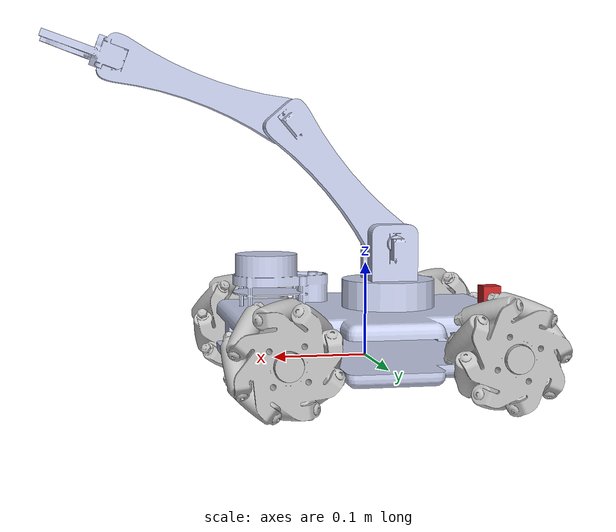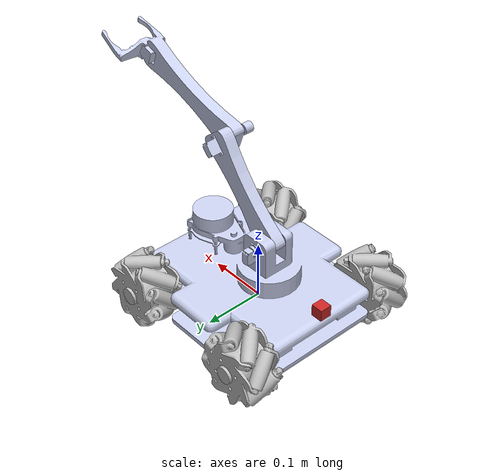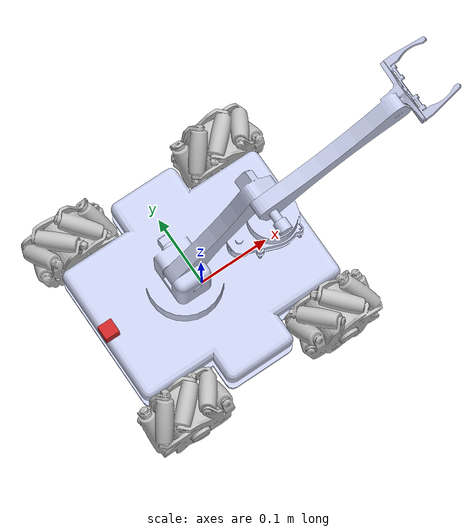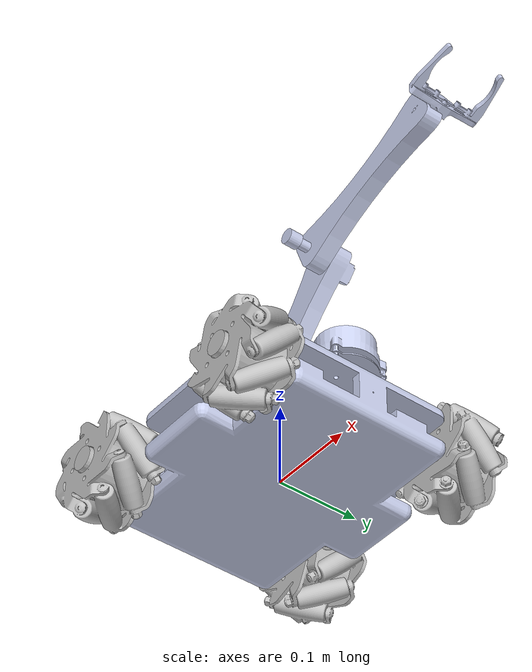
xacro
<?xml version="1.0"?>
<robot xmlns:xacro="http://www.ros.org/wiki/xacro" name="meca">

<!-- ======================================= Model include  ====================================-->

<!-- Base -->
<xacro:include filename="$(find midterm)/xacro/model/base/base.xacro"/>

<!-- Wheel -->
<xacro:include filename="$(find midterm)/xacro/model/wheel/wheel.xacro"/>

<!-- Wheel -->
<xacro:include filename="$(find midterm)/xacro/model/wheel1/wheel1.xacro"/>

<!-- Arm -->
<xacro:include filename="$(find midterm)/xacro/model/arm/arm.xacro"/>

<!-- Arm1 -->
<xacro:include filename="$(find midterm)/xacro/model/arm1/arm1.xacro"/>

<!-- RplidarA1 -->
<xacro:include filename="$(find midterm)/xacro/model/sensor/lidar/lidar.xacro"/>

<!-- camera -->
<xacro:include filename="$(find midterm)/xacro/model/sensor/camera/camera.xacro"/>

<!-- rear camera -->

<!-- ======================================= Gazebo include  ====================================-->

<!-- Transmission -->
<xacro:include filename="$(find midterm)/xacro/gazebo/transmission/transmission.xacro"/>

<!-- Plugin -->
<xacro:include filename="$(find midterm)/xacro/gazebo/plugin/plugin.xacro"/>

<!-- ======================================= Model Macro  ====================================-->

<!-- Base -->
<xacro:base/>

<!-- Wheel -->
<xacro:wheel/>

<!-- Wheel1 -->
<xacro:wheel1/>

<!-- Wheel -->
<xacro:arm/>

<!-- Wheel1 -->
<xacro:arm1/>

<!-- RplidarA1 -->
<xacro:lidar/>

<!-- camera -->
<xacro:camera/>

<!-- rear_camera -->
<!-- ======================================= Gazebo Macro  ====================================-->

<!-- Transmission -->
<xacro:transmission_gazebo/>

<!-- Plugin -->
<xacro:gazebo_plugin/>

</robot>

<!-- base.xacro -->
<robot xmlns:xacro="http://www.ros.org/wiki/xacro">
    <xacro:macro name="base">

        <link name="base_footprint"></link>

        <joint name="joint_base_footprint" type="fixed">
            <parent link="base_footprint"/>
            <child link="base_link"/>
            <origin xyz="0.0 0.0 0.037" rpy="0.0 0.0 0.0"/>
        </joint>

        <link name="base_link">
            <inertial>
                <origin xyz="-0.00280638761136618 9.22799255059434E-05 -0.00823780680525314" rpy="0 0 0" />
                <mass value="2.73624245548653" />
                <inertia ixx="0.0111853471576075" ixy="-7.2511498712482E-11" ixz="0.000255799746468985" iyy="0.0161314353661535" iyz="1.81571166508761E-07" izz="0.0239017300755925" />
            </inertial>
            <visual>
                <origin xyz="0 0 0" rpy="0 0 0" />
                <geometry>
                    <mesh filename="package://midterm/urdf/meshes/base_link.STL" />
                </geometry>
                <material name="">
                    <color rgba="0.792156862745098 0.819607843137255 0.933333333333333 1" />
                </material>
            </visual>
            <collision>
                <origin xyz="0 0 0" rpy="0 0 0" />
                <geometry>
                    <mesh filename="package://midterm/urdf/meshes/base_link.STL" />
                </geometry>
            </collision>
        </link>
    </xacro:macro>

</robot>

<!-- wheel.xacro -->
<robot xmlns:xacro="http://www.ros.org/wiki/xacro">

  <xacro:macro name="wheel">

    <link name="Left_forward_wheel">
      <inertial>
        <origin xyz="1.2490009027033E-16 -6.1409211049579E-16 -0.0318963397161268" rpy="0 0 0" />
        <mass value="0.38693434007123" />
        <inertia ixx="0.000164665684225832" ixy="1.03435021381098E-16" ixz="2.79933590586541E-16" iyy="0.000164665684225701" iyz="1.53586588595806E-16" izz="0.000205539151193427" />
      </inertial>
      <visual>
        <origin xyz="0 0 0" rpy="0 0 0" />
        <geometry>
          <mesh filename="package://midterm/urdf/meshes/Left_forward_wheel.STL" />
        </geometry>
        <material name="">
          <color rgba="0.752941176470588 0.752941176470588 0.752941176470588 1" />
        </material>
      </visual>
      <collision>
        <origin xyz="0 0 0" rpy="0 0 0" />
        <geometry>
          <mesh filename="package://midterm/urdf/meshes/Left_forward_wheel.STL" />
        </geometry>
      </collision>
    </link>

    <joint name="Left_forward_joint" type="fixed">
      <origin xyz="0 0 0" rpy="0 0 0" />
      <parent link="Left_forward_wheel1" />
      <child link="Left_forward_wheel" />
      <axis xyz="0 0 1" />
      <dynamics damping="0.1" friction="0.1" />
    </joint>

    <link name="Right_forward_wheel">
      <inertial>
        <origin xyz="-1.2490009027033E-16 4.85722573273506E-17 -0.0318963396900528" rpy="0 0 0" />
        <mass value="0.386934339646562" />
        <inertia ixx="0.00016466568423101" ixy="-3.19541061769317E-17" ixz="-3.82361260302432E-17" iyy="0.000164665684231041" iyz="-2.40756939158418E-17" izz="0.000205539151181393" />
      </inertial>
      <visual>
        <origin xyz="0 0 0" rpy="0 0 0" />
        <geometry>
          <mesh filename="package://midterm/urdf/meshes/Right_forward_wheel.STL" />
        </geometry>
        <material name="">
          <color rgba="0.752941176470588 0.752941176470588 0.752941176470588 1" />
        </material>
      </visual>
      <collision>
        <origin xyz="0 0 0" rpy="0 0 0" />
        <geometry>
          <mesh filename="package://midterm/urdf/meshes/Right_forward_wheel.STL" />
        </geometry>
      </collision>
    </link>

    <joint name="Right_forward_joint" type="fixed">
      <origin xyz="0 0 0" rpy="0 0 0" />
      <parent link="Right_forward_wheel1" />
      <child link="Right_forward_wheel" />
      <axis xyz="0 0 -1" />
      <dynamics damping="0.1" friction="0.1" />
    </joint>

    <link name="Left_backward_wheel">
      <inertial>
        <origin xyz="-3.88578058618805E-16 1.52655665885959E-16 -0.0318963396983103" rpy="0 0 0" />
        <mass value="0.38693433977405" />
        <inertia ixx="0.000164665684224543" ixy="-5.44366971754961E-17" ixz="-1.64638873428518E-17" iyy="0.000164665684224467" iyz="-4.73291942910437E-17" izz="0.000205539151192063" />
      </inertial>
      <visual>
        <origin xyz="0 0 0" rpy="0 0 0" />
        <geometry>
          <mesh filename="package://midterm/urdf/meshes/Right_backward_wheel.STL" />
        </geometry>
        <material name="">
          <color rgba="0.752941176470588 0.752941176470588 0.752941176470588 1" />
        </material>
      </visual>
      <collision>
        <origin xyz="0 0 0" rpy="0 0 0" />
        <geometry>
          <mesh filename="package://midterm/urdf/meshes/Right_backward_wheel.STL" />
        </geometry>
      </collision>
    </link>

    <joint name="Left_backward_joint" type="fixed">
      <origin xyz="0 0 0" rpy="0 0 0" />
      <parent link="Left_backward_wheel1" />
      <child link="Left_backward_wheel" />
      <axis xyz="0 0 1" />
      <dynamics damping="0.1" friction="0.1" />
    </joint>

    <link name="Right_backward_wheel">
      <inertial>
        <origin xyz="3.88578058618805E-16 3.81639164714898E-17 -0.0318963396918449" rpy="0 0 0" />
        <mass value="0.386934339673269" />
        <inertia ixx="0.000164665684230379" ixy="7.84436153661023E-17" ixz="-5.11751895742631E-17" iyy="0.000164665684230335" iyz="-1.24644074562022E-17" izz="0.000205539151179241" />
      </inertial>
      <visual>
        <origin xyz="0 0 0" rpy="0 0 0" />
        <geometry>
          <mesh filename="package://midterm/urdf/meshes/Left_backward_wheel.STL" />
        </geometry>
        <material name="">
          <color rgba="0.752941176470588 0.752941176470588 0.752941176470588 1" />
        </material>
      </visual>
      <collision>
        <origin xyz="0 0 0" rpy="0 0 0" />
        <geometry>
          <mesh filename="package://midterm/urdf/meshes/Left_backward_wheel.STL" />
        </geometry>
      </collision>
    </link>

    <joint name="Right_backward_joint" type="fixed">
      <origin xyz="0 0 0" rpy="0 0 0" />
      <parent link="Right_backward_wheel1" />
      <child link="Right_backward_wheel" />
      <axis xyz="0 0 -1" />
      <dynamics damping="0.1" friction="0.1" />
    </joint>
  </xacro:macro>

</robot>

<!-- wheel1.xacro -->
<robot xmlns:xacro="http://www.ros.org/wiki/xacro">

    <xacro:macro name="wheel1">

        <link name="Left_forward_wheel1">
            <inertial>
                <origin xyz="1.2490009027033E-16 -6.1409211049579E-16 -0.0318963397161268" rpy="0 0 0" />
                <mass value="0.38693434007123" />
                <inertia ixx="0.000164665684225832" ixy="1.03435021381098E-16" ixz="2.79933590586541E-16" iyy="0.000164665684225701" iyz="1.53586588595806E-16" izz="0.000205539151193427" />
            </inertial>
            <visual>
                <origin xyz="0 0 0" rpy="0 0 0" />
                <geometry>
                    <cylinder length="0.009" radius="0.014"/>
                </geometry>
                <material name="">
                    <color rgba="0.752941176470588 0.752941176470588 0.752941176470588 1" />
                </material>
            </visual>
            <collision>
                <origin xyz="0 0 0" rpy="0 0 0" />
                <geometry>
                    <cylinder length="0.009" radius="0.014"/>
                </geometry>
            </collision>
        </link>
        <joint name="Left_forward_joint1" type="continuous">
            <origin xyz="0.1135 0.165 -0.0179" rpy="-1.5708 0 0" />
            <parent link="base_link" />
            <child link="Left_forward_wheel1" />
            <axis xyz="0 0 1" />
            <dynamics damping="0.1" friction="0.1" />
        </joint>

        <link name="Right_forward_wheel1">
            <inertial>
                <origin xyz="-1.2490009027033E-16 4.85722573273506E-17 -0.0318963396900528" rpy="0 0 0" />
                <mass value="0.386934339646562" />
                <inertia ixx="0.00016466568423101" ixy="-3.19541061769317E-17" ixz="-3.82361260302432E-17" iyy="0.000164665684231041" iyz="-2.40756939158418E-17" izz="0.000205539151181393" />
            </inertial>
            <visual>
                <origin xyz="0 0 0" rpy="0 0 0" />
                <geometry>
                    <cylinder length="0.009" radius="0.014"/>
                </geometry>
                <material name="">
                    <color rgba="0.752941176470588 0.752941176470588 0.752941176470588 1" />
                </material>
            </visual>
            <collision>
                <origin xyz="0 0 0" rpy="0 0 0" />
                <geometry>
                    <cylinder length="0.009" radius="0.014"/>
                </geometry>
            </collision>
        </link>
        <joint name="Right_forward_joint1" type="continuous">
            <origin xyz="0.1135 -0.165 -0.0179" rpy="1.5708 0 0" />
            <parent link="base_link" />
            <child link="Right_forward_wheel1" />
            <axis xyz="0 0 -1" />
            <dynamics damping="0.1" friction="0.1" />
        </joint>

        <link name="Left_backward_wheel1">
            <inertial>
                <origin xyz="-3.88578058618805E-16 1.52655665885959E-16 -0.0318963396983103" rpy="0 0 0" />
                <mass value="0.38693433977405" />
                <inertia ixx="0.000164665684224543" ixy="-5.44366971754961E-17" ixz="-1.64638873428518E-17" iyy="0.000164665684224467" iyz="-4.73291942910437E-17" izz="0.000205539151192063" />
            </inertial>
            <visual>
                <origin xyz="0 0 0" rpy="0 0 0" />
                <geometry>
                    <cylinder length="0.009" radius="0.014"/>
                </geometry>
                <material name="">
                    <color rgba="0.752941176470588 0.752941176470588 0.752941176470588 1" />
                </material>
            </visual>
            <collision>
                <origin xyz="0 0 0" rpy="0 0 0" />
                <geometry>
                    <cylinder length="0.009" radius="0.014"/>
                </geometry>
            </collision>
        </link>
        <joint name="Left_backward_joint1" type="continuous">
            <origin xyz="-0.1135 0.165 -0.0179" rpy="-1.5708 0 0" />
            <parent link="base_link" />
            <child link="Left_backward_wheel1" />
            <axis xyz="0 0 1" />
            <dynamics damping="0.1" friction="0.1" />
        </joint>

        <link name="Right_backward_wheel1">
            <inertial>
                <origin xyz="3.88578058618805E-16 3.81639164714898E-17 -0.0318963396918449" rpy="0 0 0" />
                <mass value="0.386934339673269" />
                <inertia ixx="0.000164665684230379" ixy="7.84436153661023E-17" ixz="-5.11751895742631E-17" iyy="0.000164665684230335" iyz="-1.24644074562022E-17" izz="0.000205539151179241" />
            </inertial>
            <visual>
                <origin xyz="0 0 0" rpy="0 0 0" />
                <geometry>
                    <cylinder length="0.009" radius="0.014"/>
                </geometry>
                <material name="">
                    <color rgba="0.752941176470588 0.752941176470588 0.752941176470588 1" />
                </material>
            </visual>
            <collision>
                <origin xyz="0 0 0" rpy="0 0 0" />
                <geometry>
                    <cylinder length="0.009" radius="0.014"/>
                </geometry>
            </collision>
        </link>
        <joint name="Right_backward_joint1" type="continuous">
            <origin xyz="-0.1135 -0.165 -0.0179" rpy="1.5708 0 0" />
            <parent link="base_link" />
            <child link="Right_backward_wheel1" />
            <axis xyz="0 0 -1" />
            <dynamics damping="0.1" friction="0.1" />
        </joint>

    <gazebo reference="Left_forward_wheel1">
		<material>Gazebo/Green</material>
		<kp>1000000.0</kp> <!-- kp and kd for rubber -->
		<kd>100.0</kd>
		<mu1>1.0</mu1>
		<mu2>1.0</mu2>
		<maxVel>3.0</maxVel>
		<minDepth>0.00</minDepth>
	</gazebo>

	<gazebo reference="Left_backward_wheel1">
		<material>Gazebo/Green</material>
		<kp>1000000.0</kp> <!-- kp and kd for rubber -->
		<kd>100.0</kd>
		<mu1>1.0</mu1>
		<mu2>1.0</mu2>
		<maxVel>3.0</maxVel>
		<minDepth>0.00</minDepth>
	</gazebo>

	<gazebo reference="Right_forward_wheel1">
		<material>Gazebo/Green</material>
		<kp>1000000.0</kp> <!-- kp and kd for rubber -->
		<kd>100.0</kd>
		<mu1>1.0</mu1>
		<mu2>1.0</mu2>
		<maxVel>3.0</maxVel>
		<minDepth>0.00</minDepth>
	</gazebo>

	<gazebo reference="Right_backward_wheel1">
		<material>Gazebo/Green</material>
		<kp>1000000.0</kp> <!-- kp and kd for rubber -->
		<kd>100.0</kd>
		<mu1>1.0</mu1>
		<mu2>1.0</mu2>
		<maxVel>3.0</maxVel>
		<minDepth>0.00</minDepth>
	</gazebo>

      <gazebo>

    <plugin name="skid_steer_drive_controller" filename="libgazebo_ros_skid_steer_drive.so">
      <updateRate>10.0</updateRate>
      <robotNamespace>/midterm</robotNamespace>
      <leftFrontJoint>Left_forward_joint1</leftFrontJoint>
      <rightFrontJoint>Right_forward_joint1</rightFrontJoint>
      <leftRearJoint>Left_backward_joint1</leftRearJoint>
      <rightRearJoint>Right_backward_joint1</rightRearJoint>
      <wheelSeparation>0.4</wheelSeparation>
      <wheelDiameter>0.2</wheelDiameter>
      <robotBaseFrame>base_footprint</robotBaseFrame>
      <torque>10</torque>

      <topicName>cmd_vel</topicName>
      <odometryTopic>odom</odometryTopic>
      <odometryFrame>odom</odometryFrame>

      <commandTopic>cmd_vel</commandTopic>
      <topic_name_twist>cmd_vel</topic_name_twist>
      <topic_name_odometry>odom</topic_name_odometry>
      <topic_name_joint>joint</topic_name_joint>

      <broadcastTF>true</broadcastTF>

      <covariance_x>0.0001</covariance_x>
      <covariance_y>0.0001</covariance_y>
      <covariance_yaw>0.01</covariance_yaw>

    </plugin>

  </gazebo>

    </xacro:macro>

</robot>

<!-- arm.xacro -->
<robot xmlns:xacro="http://www.ros.org/wiki/xacro">

    <xacro:macro name="arm">
        <link name="link1">
            <inertial>
                <origin xyz="0.0130133047131633 0.0889204179261883 -0.0296765696165617" rpy="0 0 0" />
                <mass value="0.164486554024359" />
                <inertia ixx="0.000544779739701674" ixy="-7.45784439965975E-05" ixz="9.94065100983671E-08" iyy="4.6096716851494E-05" iyz="6.79248063491979E-07" izz="0.000565982592073471" />
            </inertial>
            <visual>
                <origin xyz="0 0 0" rpy="0 0 0" />
                <geometry>
                    <mesh filename="package://midterm/urdf/meshes/link1.STL" />
                </geometry>
                <material name="">
                    <color rgba="0.792156862745098 0.819607843137255 0.933333333333333 1" />
                </material>
            </visual>
            <collision>
                <origin xyz="0 0 0" rpy="0 0 0" />
                <geometry>
                    <mesh filename="package://midterm/urdf/meshes/link1.STL" />
                </geometry>
            </collision>
        </link>
        <joint name="link1_joint" type="fixed">
            <origin xyz="0 0 0" rpy="0 0 0" />
            <parent link="link11" />
            <child link="link1" />
            <axis xyz="0 0 1" />
            <limit lower="0" upper="0" effort="0" velocity="0" />
            <dynamics damping="0.1" friction="0.1" />
        </joint>
        <link name="link2">
            <inertial>
                <origin xyz="0.104899329069202 0.0379645740880208 -0.0321285668568063" rpy="0 0 0" />
                <mass value="0.184332677556066" />
                <inertia ixx="0.000107535031720432" ixy="-0.000205718924701572" ixz="-1.78149467639473E-06" iyy="0.000593870869716796" iyz="-6.41437127577083E-07" izz="0.000681305864636033" />
            </inertial>
            <visual>
                <origin xyz="0 0 0" rpy="0 0 0" />
                <geometry>
                    <mesh filename="package://midterm/urdf/meshes/link2.STL" />
                </geometry>
                <material name="">
                    <color rgba="0.792156862745098 0.819607843137255 0.933333333333333 1" />
                </material>
            </visual>
            <collision>
                <origin xyz="0 0 0" rpy="0 0 0" />
                <geometry>
                    <mesh filename="package://midterm/urdf/meshes/link2.STL" />
                </geometry>
            </collision>
        </link>
        <joint name="link2_joint" type="fixed">
            <origin xyz="0 0 0" rpy="0 0 0" />
            <parent link="link21" />
            <child link="link2" />
            <axis xyz="0 0 1" />
            <limit lower="0" upper="0" effort="0" velocity="0" />
            <dynamics damping="0.1" friction="0.1" />
        </joint>
    </xacro:macro>

</robot>

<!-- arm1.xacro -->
<robot xmlns:xacro="http://www.ros.org/wiki/xacro">

    <xacro:macro name="arm1">

        <link name="link11">
            <inertial>
                <origin xyz="0.0130133047131633 0.0889204179261883 -0.0296765696165617" rpy="0 0 0" />
                <mass value="0.164486554024359" />
                <inertia ixx="0.000544779739701674" ixy="-7.45784439965975E-05" ixz="9.94065100983671E-08" iyy="4.6096716851494E-05" iyz="6.79248063491979E-07" izz="0.000565982592073471" />
            </inertial>
            <visual>
                <origin xyz="0 0 0" rpy="0 0 0" />
                <geometry>
                    <cylinder length="0.015" radius="0.009"/>
                </geometry>
                <material name="">
                    <color rgba="0.792156862745098 0.819607843137255 0.933333333333333 1" />
                </material>
            </visual>
            <collision>
                <origin xyz="0 0 0" rpy="0 0 0" />
                <geometry>
                    <cylinder length="0.015" radius="0.009"/>
                </geometry>
            </collision>
        </link>

        <joint name="link1_joint1" type="revolute">
            <origin xyz="-0.025 0.0295 0.085" rpy="1.5708 -0.85308 3.1416" />
            <parent link="base_link" />
            <child link="link11" />
            <axis xyz="0 0 1" />
            <limit lower="0" upper="0.6" effort="10" velocity="2" />
            <dynamics damping="0.1" friction="0.1" />
        </joint>

        <link name="link21">
            <inertial>
                <origin xyz="0.104899329069202 0.0379645740880208 -0.0321285668568063" rpy="0 0 0" />
                <mass value="0.184332677556066" />
                <inertia ixx="0.000107535031720432" ixy="-0.000205718924701572" ixz="-1.78149467639473E-06" iyy="0.000593870869716796" iyz="-6.41437127577083E-07" izz="0.000681305864636033" />
            </inertial>
            <visual>
                <origin xyz="0 0 0" rpy="0 0 0" />
                <geometry>
                    <cylinder length="0.015" radius="0.009"/>
                </geometry>
                <material name="">
                    <color rgba="0.792156862745098 0.819607843137255 0.933333333333333 1" />
                </material>
            </visual>
            <collision>
                <origin xyz="0 0 0" rpy="0 0 0" />
                <geometry>
                    <cylinder length="0.015" radius="0.009"/>
                </geometry>
            </collision>
        </link>

        <joint name="link2_joint1" type="revolute">
            <origin xyz="0.024617 0.16821 -0.08085" rpy="3.1416 0 2.2885" />
            <parent link="link11" />
            <child link="link21" />
            <axis xyz="0 0 1" />
            <limit lower="0" upper="1.047" effort="10" velocity="2" />
            <dynamics damping="0.1" friction="0.1" />
        </joint>
    </xacro:macro>

    <gazebo reference="link11">
        <material>Gazebo/Green</material>
        <mu1>0.2</mu1>
        <mu2>0.2</mu2>
        <material>Gazebo/Black</material>
    </gazebo>

    <gazebo reference="link21">
        <material>Gazebo/Green</material>
        <mu1>0.2</mu1>
        <mu2>0.2</mu2>
        <material>Gazebo/Black</material>
    </gazebo>

    <gazebo>
        <plugin name="servo_plugin1" filename="libgazebo_ros_joint_position_control.so">
            <joint>link1_joint1</joint>
            <commandTopic>/servo_joint1/command</commandTopic>
            <gain>10.0</gain>
        </plugin>
    </gazebo>

    <gazebo>
        <plugin name="servo_plugin2" filename="libgazebo_ros_joint_position_control.so">
            <joint>link2_joint1</joint>
            <commandTopic>/servo_joint2/command</commandTopic>
            <gain>10.0</gain>
        </plugin>
    </gazebo>

</robot>

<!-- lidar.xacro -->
<robot xmlns:xacro="http://www.ros.org/wiki/xacro">
    <xacro:macro name="lidar">

        <link name="lindar">
            <inertial>
                <origin xyz="-0.00829409957033964 -6.93889390390723E-18 0.010701142222791" rpy="0 0 0" />
                <mass value="0.146695752131392" />
                <inertia ixx="6.22721120792818E-05" ixy="-1.8353446398283E-20" ixz="-1.88658076337422E-05" iyy="0.000109673997590948" iyz="-8.39148657969651E-21" izz="0.000125682524275729" />
            </inertial>
            <visual>
                <origin xyz="0 0 0" rpy="0 0 0" />
                <geometry>
                    <mesh filename="package://midterm/urdf/meshes/lindar.STL" />
                </geometry>
                <material name="">
                    <color rgba="0.792156862745098 0.819607843137255 0.933333333333333 1" />
                </material>
            </visual>
            <collision>
                <origin xyz="0 0 0" rpy="0 0 0" />
                <geometry>
                    <mesh filename="package://midterm/urdf/meshes/lindar.STL" />
                </geometry>
            </collision>
        </link>
        <joint name="lidar_joint" type="fixed">
            <origin xyz="0.108 0 0.042" rpy="0 0 0" />
            <parent link="base_link" />
            <child link="lindar" />
            <axis xyz="0 0 0" />
            <dynamics damping="0.1" friction="0.1" />
        </joint>

    <gazebo reference="lindar">
      <sensor type="ray" name="lidar_sensor">
        <pose>0 0 0 0 0 0</pose>
        <visualize>true</visualize>
        <update_rate>30</update_rate>
        <ray>
          <scan>
            <horizontal>
              <samples>720</samples>
              <resolution>1</resolution>
              <min_angle>-1.5708</min_angle>
              <max_angle>1.5708</max_angle>
            </horizontal>
          </scan>
          <range>
            <min>0.1</min>
            <max>30.0</max>
            <resolution>0.01</resolution>
          </range>
          <noise>
            <type>gaussian</type>
            <mean>0.0</mean>
            <stddev>0.01</stddev>
          </noise>
        </ray>
        <plugin name="gazebo_ros_laser" filename="libgazebo_ros_laser.so">
          <topicName>/scan</topicName>
          <frameName>lindar</frameName>
        </plugin>
      </sensor>
    </gazebo>
    </xacro:macro>
</robot>

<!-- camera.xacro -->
<robot xmlns:xacro="http://www.ros.org/wiki/xacro">
    <xacro:macro name="camera">
        <link name="camera">
            <inertial>
                <mass value="0.1"/>
                <origin xyz="0 0 0" rpy="0 0 0"/>
                <inertia ixx="1e-6" ixy="0.0" ixz="0.0" iyy="1e-6" iyz="0.0" izz="1e-6" />
            </inertial>

            <visual>
                <origin xyz="0 0 0" rpy="0 0 0"/>
                <geometry>
                    <box size="0.02 0.02 0.02"/>
                </geometry>
            </visual>

            <collision>
                <origin xyz="0 0 0" rpy="0 0 0"/>
                <geometry>
                    <box size="0.02 0.02 0.02"/>
                </geometry>
            </collision>
        </link>

        <joint name="camera_joint" type="fixed">

            <parent link="base_link"/>

            <child link="camera"/>

            <origin xyz="-0.14 0 0.025" rpy="0 0 3.14"/>

        </joint>

        <gazebo reference="camera">
            <material>Gazebo/Red</material>
                <sensor type="camera" name="camera1">
                    <update_rate>30.0</update_rate>
                    <camera name="head">
                        <horizontal_fov>1.3962634</horizontal_fov>
                        <image>
                            <width>800</width>
                            <height>800</height>
                            <format>R8G8B8</format>
                        </image>
                        <clip>
                            <near>0.02</near>
                            <far>300</far>
                        </clip>
                    </camera>
                    <plugin name="camera_controller" filename="libgazebo_ros_camera.so">
                        <robotNamespace>/midterm</robotNamespace>
                        <alwaysOn>true</alwaysOn>
                        <updateRate>0.0</updateRate>
                        <cameraName>camera</cameraName>
                        <imageTopicName>rgb/image_raw</imageTopicName>
                        <cameraInfoTopicName>rgb/camera_info</cameraInfoTopicName>
                        <frameName>camera</frameName>
                        <hackBaseline>0.07</hackBaseline>
                        <distortionK1>0.0</distortionK1>
                        <distortionK2>0.0</distortionK2>
                        <distortionK3>0.0</distortionK3>
                        <distortionT1>0.0</distortionT1>
                        <distortionT2>0.0</distortionT2>
                    </plugin>
                </sensor>
            </gazebo>

        </xacro:macro>
    </robot>
